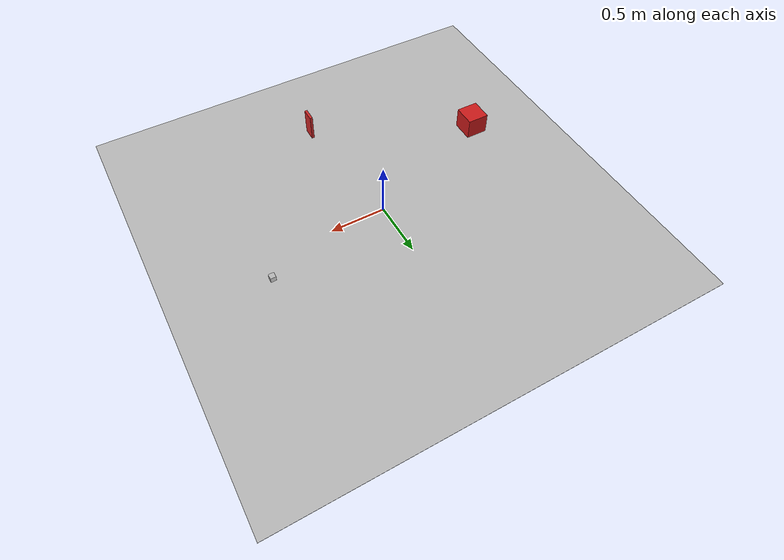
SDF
<sdf version="1.7">
 <world name="default">
  <scene>
   <ambient>0.8 0.8 0.8 1</ambient>
   <shadows>0</shadows>
   <grid>0</grid>
   <background>0.7 0.7 0.7 1</background>
  </scene>
  <model name="course">
   <static>1</static>
   <link name="course_link">
    <collision name="course_collision">
     <geometry><plane><normal>0 0 1</normal><size>4 4</size></plane></geometry>
     <surface><friction><ode><mu>100</mu><mu2>50</mu2></ode></friction></surface>
    </collision>
    <visual name="course_visual">
     <cast_shadows>0</cast_shadows>
     <geometry><plane><normal>0 0 1</normal><size>4 4</size></plane></geometry>
     <material>
      <script>
       <uri>model://turtlebot3_course/course/materials/scripts</uri>
       <uri>model://turtlebot3_course/course/materials/textures</uri>
       <name>course</name>
      </script>
     </material>
    </visual>
   </link>
   <pose>0 0 0 0 0 -3.14</pose>
  </model>
  <model name="traffic_light">
   <link name="traffic_light">
    <collision name="collision"><geometry><box><size>0.12 0.025 0.25</size></box></geometry></collision>
    <visual name="visual">
     <geometry><box><size>0.12 0.025 0.25</size></box></geometry>
     <material>
      <script>
       <uri>model://turtlebot3_course/traffic_light/materials/scripts</uri>
       <uri>model://turtlebot3_course/traffic_light/materials/textures</uri>
       <name>traffic_light_red</name>
      </script>
     </material>
    </visual>
   </link>
   <plugin name="traffic_light_plugin" filename="libtraffic_light_plugin.so"/>
   <static>1</static>
   <pose>0.154749 -1.16751 0.13 0 0 -1.57</pose>
  </model>
  <gravity>0 0 -9.8</gravity>
  <physics name="default_physics" default="0" type="ode">
   <max_step_size>0.001</max_step_size>
   <real_time_factor>1</real_time_factor>
   <real_time_update_rate>1000</real_time_update_rate>
  </physics>
  <magnetic_field>6e-06 2.3e-05 -4.2e-05</magnetic_field>
  <atmosphere type="adiabatic"/>
  <audio><device>default</device></audio>
  <spherical_coordinates>
   <surface_model>EARTH_WGS84</surface_model>
   <latitude_deg>0</latitude_deg>
   <longitude_deg>0</longitude_deg>
   <elevation>0</elevation>
   <heading_deg>0</heading_deg>
  </spherical_coordinates>
  <model name="aruco_visual_marker_0">
   <link name="marker">
    <pose>0 0 0.025 0 -0 0</pose>
    <inertial>
     <mass>0.05</mass>
     <inertia>
      <ixx>5.208e-06</ixx>
      <iyy>5.208e-06</iyy>
      <izz>5.208e-06</izz>
      <ixy>0</ixy>
      <ixz>0</ixz>
      <iyz>0</iyz>
     </inertia>
    </inertial>
    <visual name="face_top">
     <pose>0 0 0.025 0 -0 0</pose>
     <geometry><box><size>0.05 0.05 0.0001</size></box></geometry>
     <material>
      <script>
       <uri>model://aruco_visual_marker_0/materials/scripts</uri>
       <uri>model://aruco_visual_marker_0/materials/textures</uri>
       <name>ArucoVisualMarker0/Marker</name>
      </script>
     </material>
    </visual>
    <visual name="face_bottom">
     <pose>0 0 -0.025 0 -0 0</pose>
     <geometry><box><size>0.05 0.05 0.0001</size></box></geometry>
     <material>
      <script><uri>file://media/materials/scripts/gazebo.material</uri><name>Gazebo/White</name></script>
     </material>
    </visual>
    <visual name="face_front">
     <pose>0 -0.025 0 1.5708 -0 0</pose>
     <geometry><box><size>0.05 0.05 0.0001</size></box></geometry>
     <material>
      <script><uri>file://media/materials/scripts/gazebo.material</uri><name>Gazebo/White</name></script>
     </material>
    </visual>
    <visual name="face_back">
     <pose>0 0.025 0 -1.5708 0 0</pose>
     <geometry><box><size>0.05 0.05 0.0001</size></box></geometry>
     <material>
      <script><uri>file://media/materials/scripts/gazebo.material</uri><name>Gazebo/White</name></script>
     </material>
    </visual>
    <visual name="face_left">
     <pose>-0.025 0 0 3.14159 1.57079 3.14159</pose>
     <geometry><box><size>0.05 0.05 0.0001</size></box></geometry>
     <material>
      <script><uri>file://media/materials/scripts/gazebo.material</uri><name>Gazebo/White</name></script>
     </material>
    </visual>
    <visual name="face_right">
     <pose>0.025 0 0 3.14159 -1.57079 3.14159</pose>
     <geometry><box><size>0.05 0.05 0.0001</size></box></geometry>
     <material>
      <script><uri>file://media/materials/scripts/gazebo.material</uri><name>Gazebo/White</name></script>
     </material>
    </visual>
    <collision name="collision"><geometry><box><size>0.05 0.05 0.05</size></box></geometry></collision>
   </link>
   <pose>1.13519 0.215805 -5e-06 -0.000182 1e-06 -0.00013</pose>
  </model>
  <model name="dynamic_obstacle">
   <static>0</static>
   <link name="link">
    <pose>0 0 0.1 0 -0 0</pose>
    <inertial>
     <mass>0.2</mass>
     <inertia>
      <ixx>0.000333</ixx>
      <iyy>0.000333</iyy>
      <izz>0.000333</izz>
      <ixy>0</ixy>
      <ixz>0</ixz>
      <iyz>0</iyz>
     </inertia>
    </inertial>
    <collision name="collision"><geometry><box><size>0.2 0.2 0.2</size></box></geometry></collision>
    <visual name="visual">
     <geometry><box><size>0.2 0.2 0.2</size></box></geometry>
     <material><ambient>0.8 0.1 0.1 1</ambient><diffuse>0.8 0.1 0.1 1</diffuse></material>
    </visual>
   </link>
   <pose>-1.24 -0.500001 0 0 -3e-06 0</pose>
  </model>
 </world>
</sdf>
